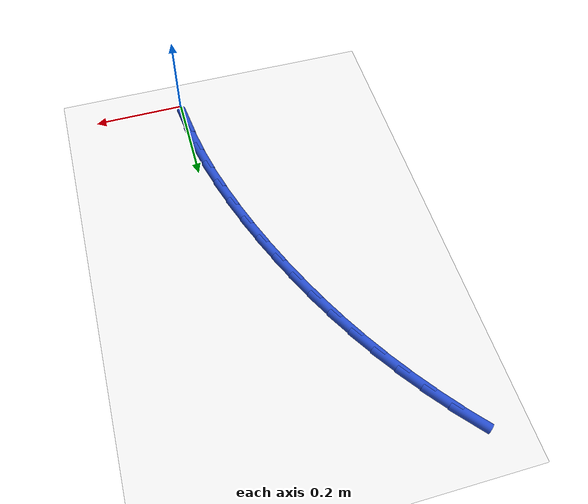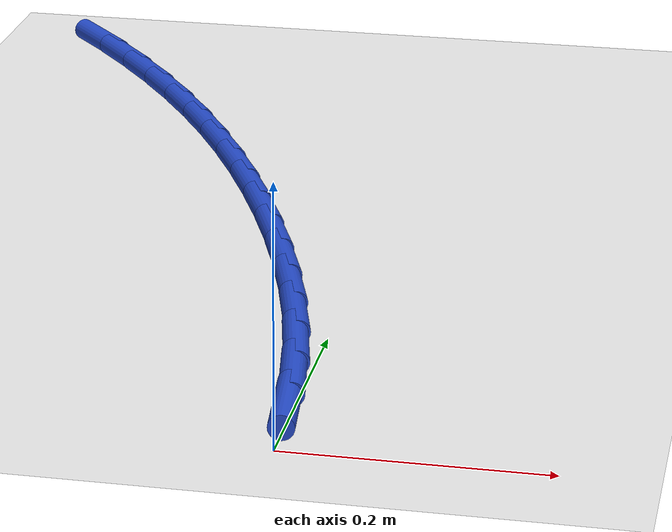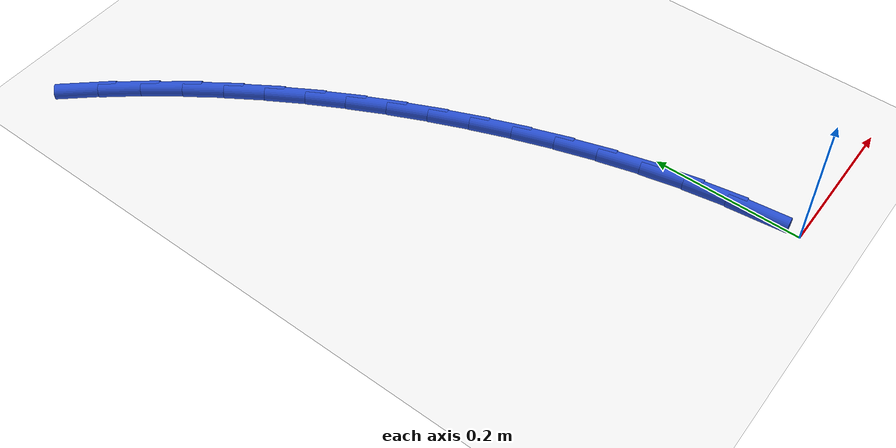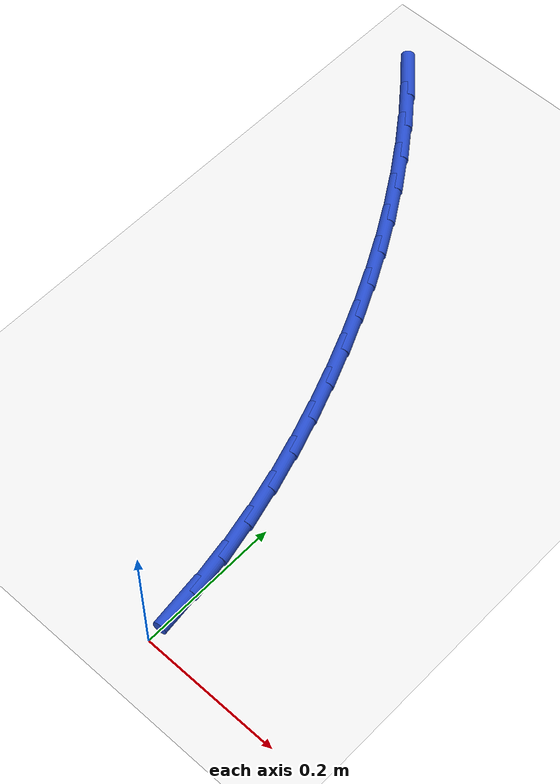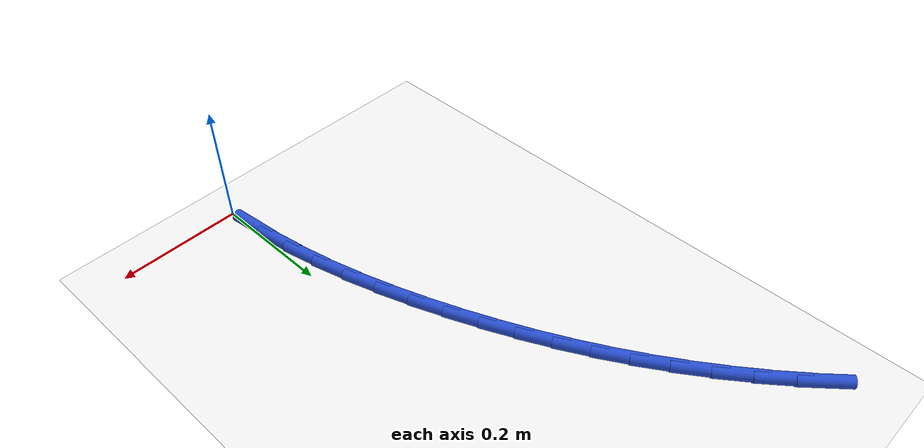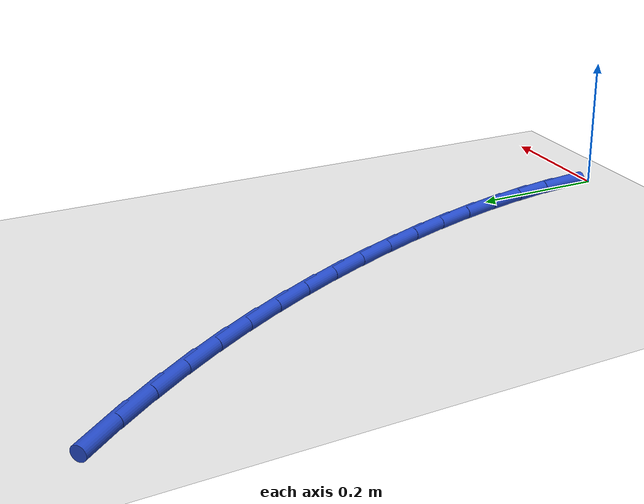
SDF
<sdf version="1.6">
 <world name="default">
  <model name="ground_plane">
   <static>1</static>
   <link name="link">
    <collision name="collision">
     <geometry><plane><normal>0 0 1</normal><size>100 100</size></plane></geometry>
     <surface><friction><ode><mu>100</mu><mu2>50</mu2></ode></friction></surface>
    </collision>
    <visual name="visual">
     <cast_shadows>0</cast_shadows>
     <geometry><plane><normal>0 0 1</normal><size>100 100</size></plane></geometry>
     <material>
      <script><uri>file://media/materials/scripts/gazebo.material</uri><name>Gazebo/WhiteGlow</name></script>
     </material>
    </visual>
   </link>
  </model>
  <model name="line">
   <link name="link_1">
    <pose>-0.002924515269553467 0.05652008626312938 0.01 0 1.57 -1.4595664598543692</pose>
    <collision name="collision">
     <geometry><cylinder><radius>0.01</radius><length>0.08</length></cylinder></geometry>
    </collision>
    <visual name="visual">
     <material>
      <script><name>Gazebo/Blue</name><uri>file://media/materials/scripts/gazebo.material</uri></script>
     </material>
     <geometry><cylinder><radius>0.01</radius><length>0.08</length></cylinder></geometry>
    </visual>
   </link>
   <link name="link_2">
    <pose>-0.009207184599790863 0.11277060785166221 0.01 0 1.57 -1.4051411693131894</pose>
    <collision name="collision">
     <geometry><cylinder><radius>0.01</radius><length>0.08</length></cylinder></geometry>
    </collision>
    <visual name="visual">
     <material>
      <script><name>Gazebo/Blue</name><uri>file://media/materials/scripts/gazebo.material</uri></script>
     </material>
     <geometry><cylinder><radius>0.01</radius><length>0.08</length></cylinder></geometry>
    </visual>
   </link>
   <link name="link_3">
    <pose>-0.018545041480776108 0.168623290062879 0.01 0 1.57 -1.3556561289065543</pose>
    <collision name="collision">
     <geometry><cylinder><radius>0.01</radius><length>0.08</length></cylinder></geometry>
    </collision>
    <visual name="visual">
     <material>
      <script><name>Gazebo/Blue</name><uri>file://media/materials/scripts/gazebo.material</uri></script>
     </material>
     <geometry><cylinder><radius>0.01</radius><length>0.08</length></cylinder></geometry>
    </visual>
   </link>
   <link name="link_4">
    <pose>-0.030635119402573074 0.22394985819406033 0.01 0 1.57 -1.3108756740906422</pose>
    <collision name="collision">
     <geometry><cylinder><radius>0.01</radius><length>0.08</length></cylinder></geometry>
    </collision>
    <visual name="visual">
     <material>
      <script><name>Gazebo/Blue</name><uri>file://media/materials/scripts/gazebo.material</uri></script>
     </material>
     <geometry><cylinder><radius>0.01</radius><length>0.08</length></cylinder></geometry>
    </visual>
   </link>
   <link name="link_5">
    <pose>-0.04517445185524564 0.2786220375424868 0.01 0 1.57 -1.2705314752700712</pose>
    <collision name="collision">
     <geometry><cylinder><radius>0.01</radius><length>0.08</length></cylinder></geometry>
    </collision>
    <visual name="visual">
     <material>
      <script><name>Gazebo/Blue</name><uri>file://media/materials/scripts/gazebo.material</uri></script>
     </material>
     <geometry><cylinder><radius>0.01</radius><length>0.08</length></cylinder></geometry>
    </visual>
   </link>
   <link name="link_6">
    <pose>-0.0618600723288577 0.33251155340543886 0.01 0 1.57 -1.2343495490475975</pose>
    <collision name="collision">
     <geometry><cylinder><radius>0.01</radius><length>0.08</length></cylinder></geometry>
    </collision>
    <visual name="visual">
     <material>
      <script><name>Gazebo/Blue</name><uri>file://media/materials/scripts/gazebo.material</uri></script>
     </material>
     <geometry><cylinder><radius>0.01</radius><length>0.08</length></cylinder></geometry>
    </visual>
   </link>
   <link name="link_7">
    <pose>-0.08038901431347306 0.38549013108019714 0.01 0 1.57 -1.2020696993850095</pose>
    <collision name="collision">
     <geometry><cylinder><radius>0.01</radius><length>0.08</length></cylinder></geometry>
    </collision>
    <visual name="visual">
     <material>
      <script><name>Gazebo/Blue</name><uri>file://media/materials/scripts/gazebo.material</uri></script>
     </material>
     <geometry><cylinder><radius>0.01</radius><length>0.08</length></cylinder></geometry>
    </visual>
   </link>
   <link name="link_8">
    <pose>-0.10045833443613873 0.4374295067566357 0.01 0 1.57 -1.172305166254424</pose>
    <collision name="collision">
     <geometry><cylinder><radius>0.01</radius><length>0.08</length></cylinder></geometry>
    </collision>
    <visual name="visual">
     <material>
      <script><name>Gazebo/Blue</name><uri>file://media/materials/scripts/gazebo.material</uri></script>
     </material>
     <geometry><cylinder><radius>0.01</radius><length>0.08</length></cylinder></geometry>
    </visual>
   </link>
   <link name="link_9">
    <pose>-0.1218511733213149 0.48824194386113895 0.01 0 1.57 -1.1412504725120203</pose>
    <collision name="collision">
     <geometry><cylinder><radius>0.01</radius><length>0.08</length></cylinder></geometry>
    </collision>
    <visual name="visual">
     <material>
      <script><name>Gazebo/Blue</name><uri>file://media/materials/scripts/gazebo.material</uri></script>
     </material>
     <geometry><cylinder><radius>0.01</radius><length>0.08</length></cylinder></geometry>
    </visual>
   </link>
   <link name="link_10">
    <pose>-0.14463093248598793 0.5379716490362235 0.01 0 1.57 -1.1083312911811245</pose>
    <collision name="collision">
     <geometry><cylinder><radius>0.01</radius><length>0.08</length></cylinder></geometry>
    </collision>
    <visual name="visual">
     <material>
      <script><name>Gazebo/Blue</name><uri>file://media/materials/scripts/gazebo.material</uri></script>
     </material>
     <geometry><cylinder><radius>0.01</radius><length>0.08</length></cylinder></geometry>
    </visual>
   </link>
   <link name="link_11">
    <pose>-0.16891795223503722 0.5866896349719046 0.01 0 1.57 -1.0738031401811257</pose>
    <collision name="collision">
     <geometry><cylinder><radius>0.01</radius><length>0.08</length></cylinder></geometry>
    </collision>
    <visual name="visual">
     <material>
      <script><name>Gazebo/Blue</name><uri>file://media/materials/scripts/gazebo.material</uri></script>
     </material>
     <geometry><cylinder><radius>0.01</radius><length>0.08</length></cylinder></geometry>
    </visual>
   </link>
   <link name="link_12">
    <pose>-0.1948325728733422 0.6344669143581979 0.01 0 1.57 -1.0379664540874518</pose>
    <collision name="collision">
     <geometry><cylinder><radius>0.01</radius><length>0.08</length></cylinder></geometry>
    </collision>
    <visual name="visual">
     <material>
      <script><name>Gazebo/Blue</name><uri>file://media/materials/scripts/gazebo.material</uri></script>
     </material>
     <geometry><cylinder><radius>0.01</radius><length>0.08</length></cylinder></geometry>
    </visual>
   </link>
   <link name="link_13">
    <pose>-0.22249513470578242 0.681374499885119 0.01 0 1.57 -1.0011578783047872</pose>
    <collision name="collision">
     <geometry><cylinder><radius>0.01</radius><length>0.08</length></cylinder></geometry>
    </collision>
    <visual name="visual">
     <material>
      <script><name>Gazebo/Blue</name><uri>file://media/materials/scripts/gazebo.material</uri></script>
     </material>
     <geometry><cylinder><radius>0.01</radius><length>0.08</length></cylinder></geometry>
    </visual>
   </link>
   <link name="link_14">
    <pose>-0.25202597803723714 0.727483404242683 0.01 0 1.57 -0.9637385272499486</pose>
    <collision name="collision">
     <geometry><cylinder><radius>0.01</radius><length>0.08</length></cylinder></geometry>
    </collision>
    <visual name="visual">
     <material>
      <script><name>Gazebo/Blue</name><uri>file://media/materials/scripts/gazebo.material</uri></script>
     </material>
     <geometry><cylinder><radius>0.01</radius><length>0.08</length></cylinder></geometry>
    </visual>
   </link>
   <link name="link_15">
    <pose>-0.28354544317258595 0.7728646401209053 0.01 0 1.57 -0.9260801055363298</pose>
    <collision name="collision">
     <geometry><cylinder><radius>0.01</radius><length>0.08</length></cylinder></geometry>
    </collision>
    <visual name="visual">
     <material>
      <script><name>Gazebo/Blue</name><uri>file://media/materials/scripts/gazebo.material</uri></script>
     </material>
     <geometry><cylinder><radius>0.01</radius><length>0.08</length></cylinder></geometry>
    </visual>
   </link>
   <link name="link_16">
    <pose>-0.31717387041670825 0.8175892202098017 0.01 0 1.57 -0.8885501473949161</pose>
    <collision name="collision">
     <geometry><cylinder><radius>0.01</radius><length>0.08</length></cylinder></geometry>
    </collision>
    <visual name="visual">
     <material>
      <script><name>Gazebo/Blue</name><uri>file://media/materials/scripts/gazebo.material</uri></script>
     </material>
     <geometry><cylinder><radius>0.01</radius><length>0.08</length></cylinder></geometry>
    </visual>
   </link>
   <link name="link_17">
    <pose>-0.3530316000744835 0.8617281571993876 0.01 0 1.57 -0.8514977818351313</pose>
    <collision name="collision">
     <geometry><cylinder><radius>0.01</radius><length>0.08</length></cylinder></geometry>
    </collision>
    <visual name="visual">
     <material>
      <script><name>Gazebo/Blue</name><uri>file://media/materials/scripts/gazebo.material</uri></script>
     </material>
     <geometry><cylinder><radius>0.01</radius><length>0.08</length></cylinder></geometry>
    </visual>
   </link>
  </model>
 </world>
</sdf>
